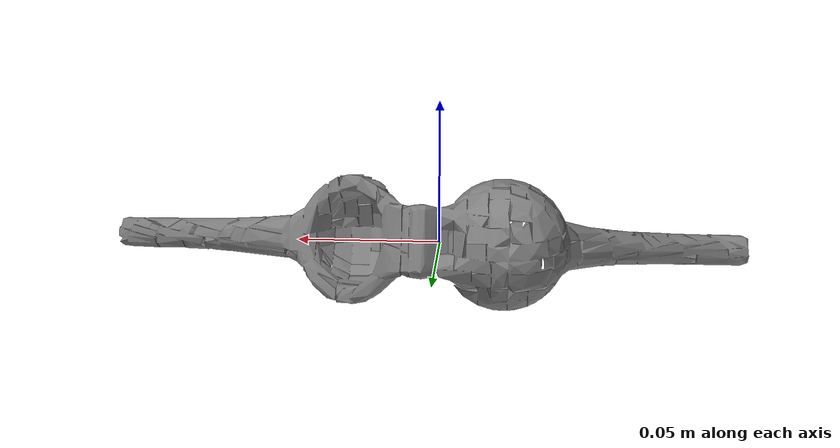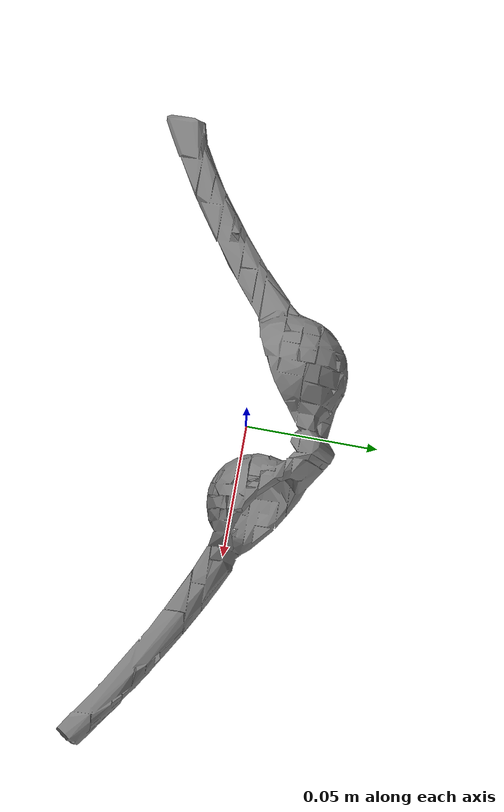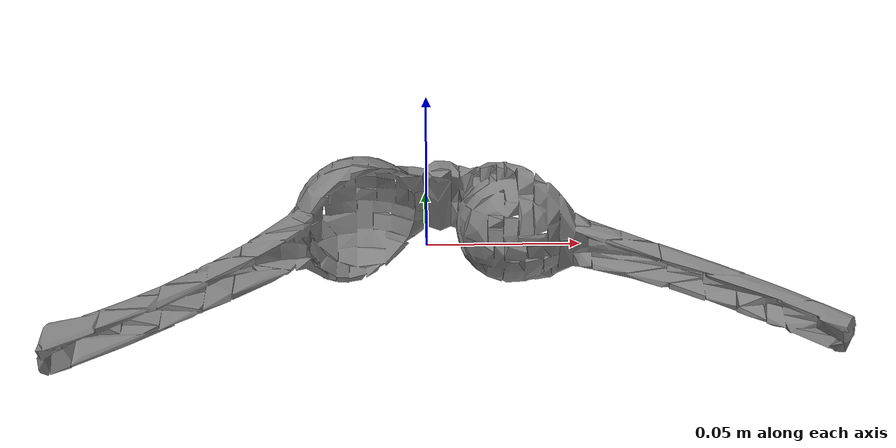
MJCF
<mujoco model="squeezer_Focus_8643_Lime_Squeezer_10x35x188_Enamelled_Aluminum_Light_M">
  <default>
    <default class="visual">
      <geom group="2" type="mesh" contype="0" conaffinity="0" />
    </default>
    <default class="collision">
      <geom group="3" type="mesh" />
    </default>
  </default>
  <asset>
    <mesh file="squeezer_Focus_8643_Lime_Squeezer_10x35x188_Enamelled_Aluminum_Light_M.stl" />
    <mesh file="squeezer_Focus_8643_Lime_Squeezer_10x35x188_Enamelled_Aluminum_Light_M_collision_0.stl" />
    <mesh file="squeezer_Focus_8643_Lime_Squeezer_10x35x188_Enamelled_Aluminum_Light_M_collision_1.stl" />
    <mesh file="squeezer_Focus_8643_Lime_Squeezer_10x35x188_Enamelled_Aluminum_Light_M_collision_2.stl" />
    <mesh file="squeezer_Focus_8643_Lime_Squeezer_10x35x188_Enamelled_Aluminum_Light_M_collision_3.stl" />
    <mesh file="squeezer_Focus_8643_Lime_Squeezer_10x35x188_Enamelled_Aluminum_Light_M_collision_4.stl" />
    <mesh file="squeezer_Focus_8643_Lime_Squeezer_10x35x188_Enamelled_Aluminum_Light_M_collision_5.stl" />
    <mesh file="squeezer_Focus_8643_Lime_Squeezer_10x35x188_Enamelled_Aluminum_Light_M_collision_6.stl" />
    <mesh file="squeezer_Focus_8643_Lime_Squeezer_10x35x188_Enamelled_Aluminum_Light_M_collision_7.stl" />
    <mesh file="squeezer_Focus_8643_Lime_Squeezer_10x35x188_Enamelled_Aluminum_Light_M_collision_8.stl" />
    <mesh file="squeezer_Focus_8643_Lime_Squeezer_10x35x188_Enamelled_Aluminum_Light_M_collision_9.stl" />
    <mesh file="squeezer_Focus_8643_Lime_Squeezer_10x35x188_Enamelled_Aluminum_Light_M_collision_10.stl" />
    <mesh file="squeezer_Focus_8643_Lime_Squeezer_10x35x188_Enamelled_Aluminum_Light_M_collision_11.stl" />
    <mesh file="squeezer_Focus_8643_Lime_Squeezer_10x35x188_Enamelled_Aluminum_Light_M_collision_12.stl" />
    <mesh file="squeezer_Focus_8643_Lime_Squeezer_10x35x188_Enamelled_Aluminum_Light_M_collision_13.stl" />
    <mesh file="squeezer_Focus_8643_Lime_Squeezer_10x35x188_Enamelled_Aluminum_Light_M_collision_14.stl" />
    <mesh file="squeezer_Focus_8643_Lime_Squeezer_10x35x188_Enamelled_Aluminum_Light_M_collision_15.stl" />
  </asset>
  <worldbody>
    <body name="squeezer_Focus_8643_Lime_Squeezer_10x35x188_Enamelled_Aluminum_Light_M">
      <geom mesh="squeezer_Focus_8643_Lime_Squeezer_10x35x188_Enamelled_Aluminum_Light_M" class="visual" />
      <geom mesh="squeezer_Focus_8643_Lime_Squeezer_10x35x188_Enamelled_Aluminum_Light_M_collision_0" class="collision" />
      <geom mesh="squeezer_Focus_8643_Lime_Squeezer_10x35x188_Enamelled_Aluminum_Light_M_collision_1" class="collision" />
      <geom mesh="squeezer_Focus_8643_Lime_Squeezer_10x35x188_Enamelled_Aluminum_Light_M_collision_2" class="collision" />
      <geom mesh="squeezer_Focus_8643_Lime_Squeezer_10x35x188_Enamelled_Aluminum_Light_M_collision_3" class="collision" />
      <geom mesh="squeezer_Focus_8643_Lime_Squeezer_10x35x188_Enamelled_Aluminum_Light_M_collision_4" class="collision" />
      <geom mesh="squeezer_Focus_8643_Lime_Squeezer_10x35x188_Enamelled_Aluminum_Light_M_collision_5" class="collision" />
      <geom mesh="squeezer_Focus_8643_Lime_Squeezer_10x35x188_Enamelled_Aluminum_Light_M_collision_6" class="collision" />
      <geom mesh="squeezer_Focus_8643_Lime_Squeezer_10x35x188_Enamelled_Aluminum_Light_M_collision_7" class="collision" />
      <geom mesh="squeezer_Focus_8643_Lime_Squeezer_10x35x188_Enamelled_Aluminum_Light_M_collision_8" class="collision" />
      <geom mesh="squeezer_Focus_8643_Lime_Squeezer_10x35x188_Enamelled_Aluminum_Light_M_collision_9" class="collision" />
      <geom mesh="squeezer_Focus_8643_Lime_Squeezer_10x35x188_Enamelled_Aluminum_Light_M_collision_10" class="collision" />
      <geom mesh="squeezer_Focus_8643_Lime_Squeezer_10x35x188_Enamelled_Aluminum_Light_M_collision_11" class="collision" />
      <geom mesh="squeezer_Focus_8643_Lime_Squeezer_10x35x188_Enamelled_Aluminum_Light_M_collision_12" class="collision" />
      <geom mesh="squeezer_Focus_8643_Lime_Squeezer_10x35x188_Enamelled_Aluminum_Light_M_collision_13" class="collision" />
      <geom mesh="squeezer_Focus_8643_Lime_Squeezer_10x35x188_Enamelled_Aluminum_Light_M_collision_14" class="collision" />
      <geom mesh="squeezer_Focus_8643_Lime_Squeezer_10x35x188_Enamelled_Aluminum_Light_M_collision_15" class="collision" />
    </body>
  </worldbody>
</mujoco>
